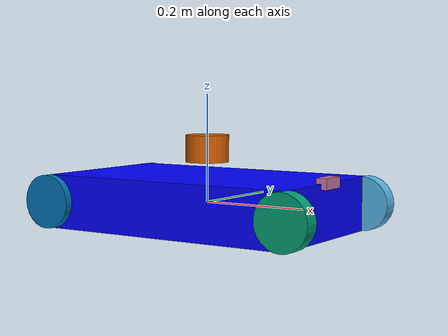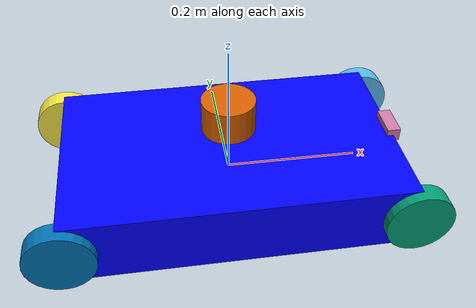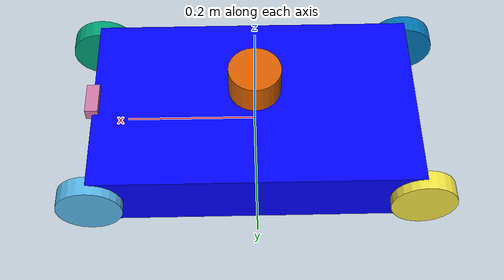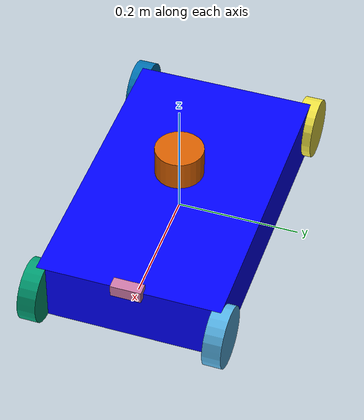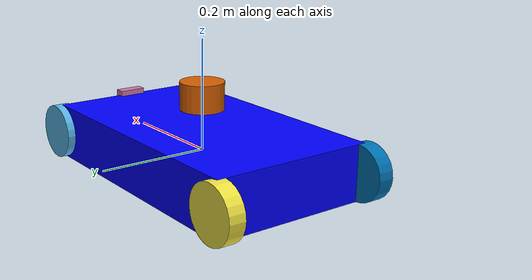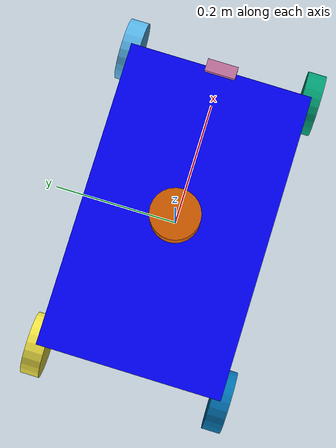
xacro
<?xml version="1.0"?>
<robot xmlns:xacro="http://ros.org/wiki/xacro" name="ackermann_robot">

  <!-- Параметры -->
  <xacro:property name="base_length" value="0.5"/>
  <xacro:property name="base_width" value="0.3"/>
  <xacro:property name="base_height" value="0.1"/>
  <xacro:property name="wheel_radius" value="0.05"/>
  <xacro:property name="wheel_width" value="0.03"/>

  <!-- base_link -->
  <link name="base_link">
    <visual>
      <geometry><box size="${base_length} ${base_width} ${base_height}"/></geometry>
      <material name="blue"><color rgba="0 0 1 1"/></material>
    </visual>
    <collision>
      <geometry><box size="${base_length} ${base_width} ${base_height}"/></geometry>
    </collision>
    <inertial>
      <mass value="5.0"/>
      <inertia ixx="0.1" ixy="0" ixz="0" iyy="0.1" iyz="0" izz="0.1"/>
    </inertial>
  </link>

  <!-- Колеса (опционально для tf, но нужно для коллизий) -->
  <xacro:macro name="wheel" params="name x y">
    <link name="${name}_link">
      <visual>
        <geometry><cylinder radius="${wheel_radius}" length="${wheel_width}"/></geometry>
      </visual>
      <collision>
        <geometry><cylinder radius="${wheel_radius}" length="${wheel_width}"/></geometry>
      </collision>
    </link>
    <joint name="${name}_joint" type="continuous">
      <parent link="base_link"/>
      <child link="${name}_link"/>
      <origin xyz="${x} ${y} 0" rpy="1.5708 0 0"/>
      <axis xyz="1 0 0"/>
    </joint>
  </xacro:macro>

  <xacro:wheel name="front_left" x="${base_length/2}" y="${base_width/2}"/>
  <xacro:wheel name="front_right" x="${base_length/2}" y="-${base_width/2}"/>
  <xacro:wheel name="rear_left" x="-${base_length/2}" y="${base_width/2}"/>
  <xacro:wheel name="rear_right" x="-${base_length/2}" y="-${base_width/2}"/>

  <!-- Сенсоры -->
  <link name="lidar_link">
    <visual><geometry><cylinder radius="0.04" length="0.05"/></geometry></visual>
  </link>
  <joint name="lidar_joint" type="fixed">
    <parent link="base_link"/>
    <child link="lidar_link"/>
    <origin xyz="0 0 ${base_height/2 + 0.05}" rpy="0 0 0"/>
  </joint>

  <link name="camera_link">
    <visual><geometry><box size="0.02 0.05 0.02"/></geometry></visual>
  </link>
  <joint name="camera_joint" type="fixed">
    <parent link="base_link"/>
    <child link="camera_link"/>
    <origin xyz="${base_length/2} 0 ${base_height/2}" rpy="0 0 0"/>
  </joint>

  <link name="imu_link">
    <visual><geometry><box size="0.01 0.01 0.01"/></geometry></visual>
  </link>
  <joint name="imu_joint" type="fixed">
    <parent link="base_link"/>
    <child link="imu_link"/>
    <origin xyz="0 0 0" rpy="0 0 0"/>
  </joint>

</robot>
